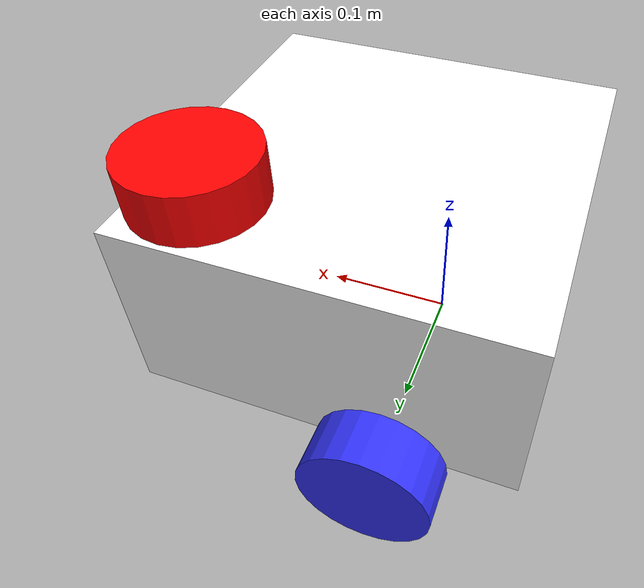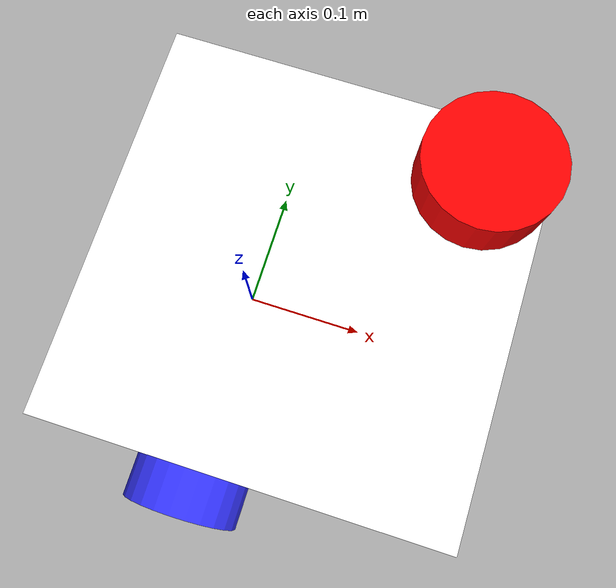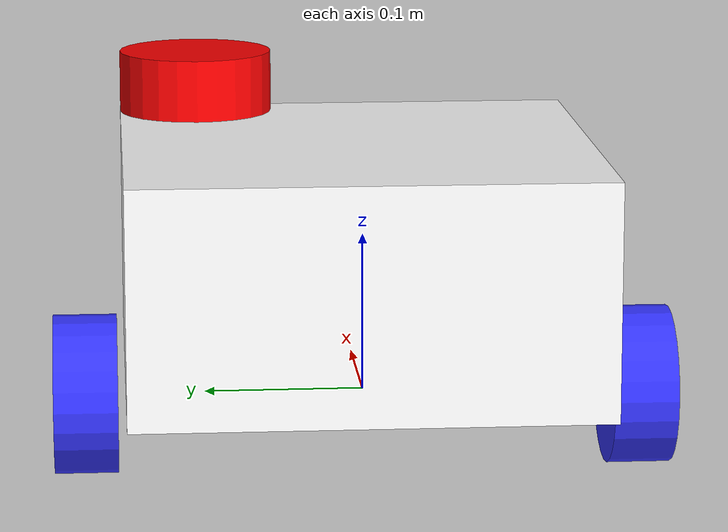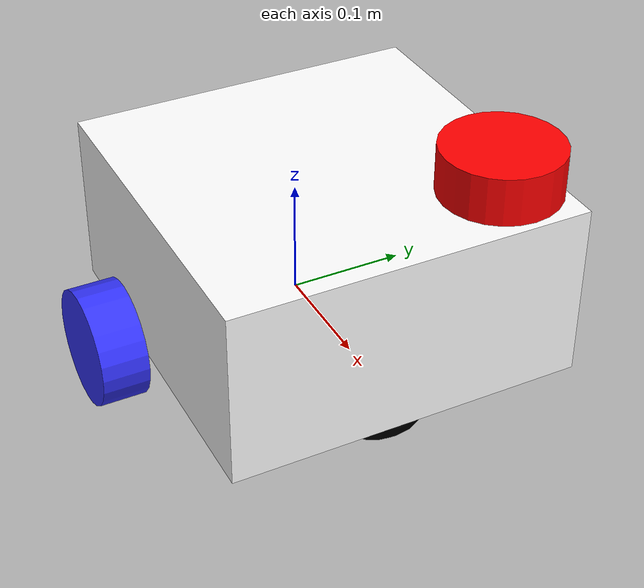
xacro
<?xml version="1.0"?>
<robot xmlns:xacro="http://www.ros.org/wiki/xacro"  name="robot">

    <xacro:arg name="use_ros2_control" default="true"/>

    <xacro:include filename="robot_core.xacro"/>

    <xacro:if value="$(arg use_ros2_control)">
        <xacro:include filename="ros2_control.xacro" />
    </xacro:if>
    <xacro:unless value="$(arg use_ros2_control)">
        <xacro:include filename="gazebo_control.xacro" />
    </xacro:unless>
    <xacro:include filename="lidar.xacro"/>

</robot>

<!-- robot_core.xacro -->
<robot xmlns:xacro="http://www.ros.org/wiki/xacro">

    <xacro:include filename='inertial_macros.xacro'/>
    <!--creating the colors-->
    <material name="white">
        <color rgba="1 1 1 1"/>
    </material>
    <material name="orange">
        <color rgba="1 0.3 0.1 1"/>
    </material>
    <material name="blue">
        <color rgba="0.2 0.2 1 1"/>
    </material>
    <material name="black">
        <color rgba="0 0 0 1"/>
    </material>
    <material name="red">
        <color rgba="1 0 0 1"/>
    </material>

    <!-- Base Link -->
    <link name="base_link">
    </link>

    <!-- BASE_FOOTPRINT LINK -->
    <joint name='base_footprint_joint' type='fixed'>
        <parent link='base_link'/>
        <child link='base_footprint'/>
        <origin xyz='0 0 0' rpy='0 0 0'/>
    </joint>
    <link name="base_footprint">
    </link>

    <!-- CHASSIS LINK -->
    <joint name="chassis_joint" type="fixed">
        <parent link="base_link"/>
        <child link="chassis"/>
        <origin xyz="-0.1 0 0"/>
    </joint>

    <link name="chassis">
        <visual>
            <origin xyz="0.15 0 0.075" rpy="0 0 0"/>
            <geometry>
                <box size="0.3 0.3 0.15"/>
            </geometry>
            <material name="white"/>
        </visual>
        <collision>
            <origin xyz="0.15 0 0.075" rpy="0 0 0"/>
            <geometry>
                <box size="0.3 0.3 0.15"/>
            </geometry>
        </collision>
        <xacro:inertial_box mass='1.5' x='0.3' y='0.3' z='0.15'>
            <origin xyz="0.15 0 0.075" rpy="0 0 0"/>
        </xacro:inertial_box>

    </link>

    <gazebo reference='chassis'>
        <material>Gazebo/White</material>
    </gazebo>

    <!-- LEFT WHEEL LINK-->
    <joint name="left_wheel_joint" type="continuous">
        <parent link="base_link"/>
        <child link="left_wheel"/>
        <origin xyz="0 0.175 0" rpy="-${pi/2} 0 0"/>
        <axis xyz="0 0 1"/>
    </joint>

    <xacro:property name='wheel_len' value='0.04'/>
    <xacro:property name='wheel_rad' value='0.05'/>
    <link name="left_wheel">
        <visual>
            <geometry>
                <cylinder length="${wheel_len}" radius="${wheel_rad}" />
            </geometry>
            <material name="blue"/>
        </visual>
        <collision>
            <geometry>
                <sphere radius="${wheel_rad}" />
            </geometry>
        </collision>
        <xacro:inertial_cylinder mass='0.1' length="${wheel_len}" radius="${wheel_rad}">
            <origin xyz='0 0 0' rpy='0 0 0'/>
        </xacro:inertial_cylinder>
    </link>

    <gazebo reference='left_wheel'>
        <material>Gazebo/Blue</material>
    </gazebo>

    <!-- RIGHT WHEEL LINK-->
    <joint name='right_wheel_joint' type='continuous'>
        <parent link='base_link'/>
        <child link='right_wheel'/>
        <origin xyz='0 -0.175 0' rpy='${pi/2} 0 0'/>
        <axis xyz='0 0 -1'/>
    </joint>

    <link name='right_wheel'>
        <visual>
            <geometry>
                <cylinder length="${wheel_len}" radius="${wheel_rad}"/>
            </geometry>
            <material name='blue'/>
        </visual>
        <collision>
            <geometry>
                <sphere radius="${wheel_rad}" />
            </geometry>
        </collision>
        <xacro:inertial_cylinder mass='0.1' length="${wheel_len}" radius="${wheel_rad}">
            <origin xyz='0 0 0' rpy='0 0 0'/>
        </xacro:inertial_cylinder>
    </link>

    <gazebo reference='right_wheel'>
        <material>Gazebo/Blue</material>
    </gazebo>

    <!-- CASTER WHEEL-->
    <joint name='caster_wheel_joint' type='fixed'>
        <parent link='chassis'/>
        <child link='caster_wheel'/>
        <origin xyz='0.24 0 0'/>
    </joint>
    <link name='caster_wheel'>
        <visual>
            <geometry>
                <sphere radius='${wheel_rad}'/>
            </geometry>
            <material name='black'/>
        </visual>
        <collision>
            <geometry>
                <sphere radius='${wheel_rad}'/>
            </geometry>
        </collision>
        <xacro:inertial_sphere mass='0.5' radius='${wheel_rad}'>
            <origin xyz='0 0 0'/>
        </xacro:inertial_sphere>
    </link>

    <gazebo reference="caster_wheel">
        <material>Gazebo/Black</material>
        <mu1 value="0.001"/>
        <mu2 value="0.001"/>
    </gazebo>

</robot>

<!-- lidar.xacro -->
<robot xmlns:xacro="http://www.ros.org/wiki/xacro">

    <xacro:include filename='inertial_macros.xacro'/>
    <!-- Create a frame for the lidar and call it 'laser' -->
    <joint name='laser_joint' type='fixed'>
        <parent link = 'chassis'/>
        <child link = 'laser_frame'/>
        <origin xyz="0.25 0.1 0.175" rpy='0 0 0'/>
    </joint>

    <link name='laser_frame'>
        <visual>
            <geometry>
                <cylinder length="${wheel_len}" radius="${wheel_rad}"/>
            </geometry>
            <material name='red'/>
        </visual>
        <collision>
            <geometry>
                <cylinder length="${wheel_len}" radius="${wheel_rad}"/>
            </geometry>
        </collision>
        <xacro:inertial_cylinder mass='0.1' length="${wheel_len}" radius="${wheel_rad}">
            <origin xyz='0 0 0' rpy='0 0 0'/>
        </xacro:inertial_cylinder>
    </link>
    <gazebo reference='laser_frame'>
        <material>Gazebo/Red</material>
    </gazebo>

    <gazebo reference='laser_frame'>
        <sensor name="laser" type="ray">
            <pose> 0 0 0 0 0 0 </pose>
            <visualize>false</visualize>
            <update_rate>10</update_rate>
            <ray>
                <scan>
                    <horizontal>
                        <samples>360</samples>
                        <min_angle>-3.14</min_angle>
                        <max_angle>3.14</max_angle>
                    </horizontal>
                </scan>
                <range>
                    <min>0.15</min>
                    <max>8</max>
                </range>
            </ray>
            <plugin name="laser_controller" filename="libgazebo_ros_ray_sensor.so">
                <ros>
                    <argument>~/out:=scan</argument>
                </ros>
                <frame_name>laser_frame</frame_name>
                <output_type>sensor_msgs/LaserScan</output_type>
            </plugin>
        </sensor>
    </gazebo>

</robot>
